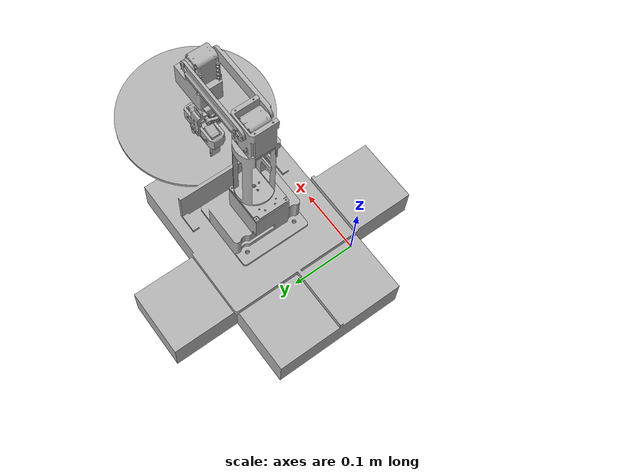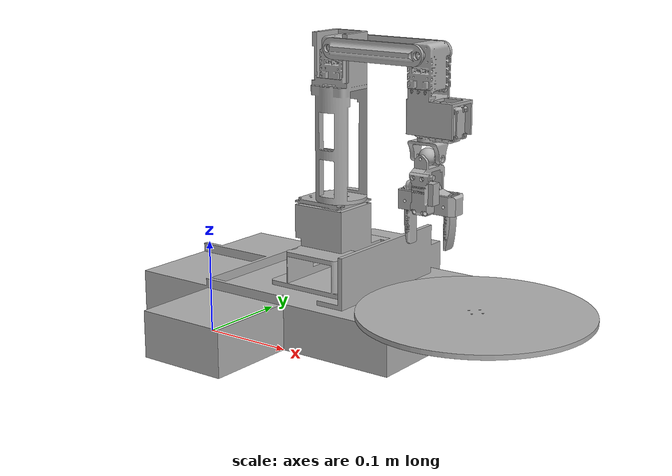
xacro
<?xml version="1.0" ?>
<robot name="plz_plz" xmlns:xacro="http://www.ros.org/wiki/xacro">

<xacro:include filename="$(find plz_plz_description)/urdf/materials.xacro" />
<xacro:include filename="$(find plz_plz_description)/urdf/plz_plz.trans" />
<xacro:include filename="$(find plz_plz_description)/urdf/plz_plz.gazebo" />
<link name="world" />

<joint name="Dummy" type="fixed">
  <parent link="world"/>
  <child link="base_link"/>
</joint>

<link name="base_link">
  <inertial>
    <origin rpy="0 0 0" xyz="0.0647656070783987 0.09964722621128595 0.02587425859081603"/>
    <mass value="34.73430793615963"/>
    <inertia ixx="0.280271" ixy="0.002401" ixz="-0.00249" iyy="0.272892" iyz="0.00013" izz="0.536481"/>
  </inertial>
  <visual>
    <origin rpy="0 0 0" xyz="0 0 0"/>
    <geometry>
      <mesh filename="package://plz_plz_description/meshes/base_link.stl" scale="0.001 0.001 0.001"/>
    </geometry>
    <material name="silver"/>
  </visual>
  <collision>
    <origin rpy="0 0 0" xyz="0 0 0"/>
    <geometry>
      <mesh filename="package://plz_plz_description/meshes/base_link.stl" scale="0.001 0.001 0.001"/>
    </geometry>
  </collision>
</link>

<link name="combined_servo_1">
  <inertial>
    <origin rpy="0 0 0" xyz="3.1092385664288624e-05 0.024262277970958118 0.0010585827393892883"/>
    <mass value="0.04244091097100989"/>
    <inertia ixx="1.2e-05" ixy="-0.0" ixz="-0.0" iyy="7e-06" iyz="0.0" izz="1e-05"/>
  </inertial>
  <visual>
    <origin rpy="0 0 0" xyz="-0.2855 -0.0621 -0.0365"/>
    <geometry>
      <mesh filename="package://plz_plz_description/meshes/combined_servo_1.stl" scale="0.001 0.001 0.001"/>
    </geometry>
    <material name="silver"/>
  </visual>
  <collision>
    <origin rpy="0 0 0" xyz="-0.2855 -0.0621 -0.0365"/>
    <geometry>
      <mesh filename="package://plz_plz_description/meshes/combined_servo_1.stl" scale="0.001 0.001 0.001"/>
    </geometry>
  </collision>
</link>

<link name="rotor_1">
  <inertial>
    <origin rpy="0 0 0" xyz="1.6653345369377348e-16 -5.551115123125783e-17 -0.0013364269823430697"/>
    <mass value="1.763990651474126"/>
    <inertia ixx="0.006396" ixy="0.0" ixz="0.0" iyy="0.006396" iyz="-0.0" izz="0.012784"/>
  </inertial>
  <visual>
    <origin rpy="0 0 0" xyz="-0.2855 -0.0736 -0.0575"/>
    <geometry>
      <mesh filename="package://plz_plz_description/meshes/rotor_1.stl" scale="0.001 0.001 0.001"/>
    </geometry>
    <material name="silver"/>
  </visual>
  <collision>
    <origin rpy="0 0 0" xyz="-0.2855 -0.0736 -0.0575"/>
    <geometry>
      <mesh filename="package://plz_plz_description/meshes/rotor_1.stl" scale="0.001 0.001 0.001"/>
    </geometry>
  </collision>
</link>

<link name="alternate_design_base_1">
  <inertial>
    <origin rpy="0 0 0" xyz="-0.04240080499470922 -0.03838955081168048 0.030268844098022774"/>
    <mass value="1.360206857851753"/>
    <inertia ixx="0.002133" ixy="3.2e-05" ixz="9e-05" iyy="0.001791" iyz="3.2e-05" izz="0.002131"/>
  </inertial>
  <visual>
    <origin rpy="0 0 0" xyz="-0.14 -0.14 -0.05"/>
    <geometry>
      <mesh filename="package://plz_plz_description/meshes/alternate_design_base_1.stl" scale="0.001 0.001 0.001"/>
    </geometry>
    <material name="silver"/>
  </visual>
  <collision>
    <origin rpy="0 0 0" xyz="-0.14 -0.14 -0.05"/>
    <geometry>
      <mesh filename="package://plz_plz_description/meshes/alternate_design_base_1.stl" scale="0.001 0.001 0.001"/>
    </geometry>
  </collision>
</link>

<link name="combined_servo_2_1">
  <inertial>
    <origin rpy="0 0 0" xyz="0.023237722029041785 0.00803109238566374 0.017058582739389316"/>
    <mass value="0.04244091097100989"/>
    <inertia ixx="7e-06" ixy="0.0" ixz="-0.0" iyy="1.2e-05" iyz="-0.0" izz="1e-05"/>
  </inertial>
  <visual>
    <origin rpy="0 0 0" xyz="-0.064 -0.092 -0.1025"/>
    <geometry>
      <mesh filename="package://plz_plz_description/meshes/combined_servo_2_1.stl" scale="0.001 0.001 0.001"/>
    </geometry>
    <material name="silver"/>
  </visual>
  <collision>
    <origin rpy="0 0 0" xyz="-0.064 -0.092 -0.1025"/>
    <geometry>
      <mesh filename="package://plz_plz_description/meshes/combined_servo_2_1.stl" scale="0.001 0.001 0.001"/>
    </geometry>
  </collision>
</link>

<link name="alternate_design_top_1">
  <inertial>
    <origin rpy="0 0 0" xyz="-0.07975434583254501 0.06199998025878909 -0.04551505890341592"/>
    <mass value="0.07878322016368548"/>
    <inertia ixx="2.4e-05" ixy="0.0" ixz="0.0" iyy="2.8e-05" iyz="-0.0" izz="5.2e-05"/>
  </inertial>
  <visual>
    <origin rpy="0 0 0" xyz="-0.169 -0.038 -0.185"/>
    <geometry>
      <mesh filename="package://plz_plz_description/meshes/alternate_design_top_1.stl" scale="0.001 0.001 0.001"/>
    </geometry>
    <material name="silver"/>
  </visual>
  <collision>
    <origin rpy="0 0 0" xyz="-0.169 -0.038 -0.185"/>
    <geometry>
      <mesh filename="package://plz_plz_description/meshes/alternate_design_top_1.stl" scale="0.001 0.001 0.001"/>
    </geometry>
  </collision>
</link>

<link name="link1_redo_1">
  <inertial>
    <origin rpy="0 0 0" xyz="-0.09999999971856094 0.1001210549833026 -0.018937112793331573"/>
    <mass value="0.6114874637735443"/>
    <inertia ixx="0.00206" ixy="0.0" ixz="0.0" iyy="0.002032" iyz="-2.7e-05" izz="0.000316"/>
  </inertial>
  <visual>
    <origin rpy="0 0 0" xyz="-0.2 0.0 -0.258"/>
    <geometry>
      <mesh filename="package://plz_plz_description/meshes/link1_redo_1.stl" scale="0.001 0.001 0.001"/>
    </geometry>
    <material name="silver"/>
  </visual>
  <collision>
    <origin rpy="0 0 0" xyz="-0.2 0.0 -0.258"/>
    <geometry>
      <mesh filename="package://plz_plz_description/meshes/link1_redo_1.stl" scale="0.001 0.001 0.001"/>
    </geometry>
  </collision>
</link>

<link name="combined_servo_v1_1">
  <inertial>
    <origin rpy="0 0 0" xyz="3.10923856640527e-05 -0.019941417260611105 -0.012762277970958136"/>
    <mass value="0.04244091097100989"/>
    <inertia ixx="1.2e-05" ixy="-0.0" ixz="0.0" iyy="1e-05" iyz="-0.0" izz="7e-06"/>
  </inertial>
  <visual>
    <origin rpy="0 0 0" xyz="-0.1 -0.12 -0.3055"/>
    <geometry>
      <mesh filename="package://plz_plz_description/meshes/combined_servo_v1_1.stl" scale="0.001 0.001 0.001"/>
    </geometry>
    <material name="silver"/>
  </visual>
  <collision>
    <origin rpy="0 0 0" xyz="-0.1 -0.12 -0.3055"/>
    <geometry>
      <mesh filename="package://plz_plz_description/meshes/combined_servo_v1_1.stl" scale="0.001 0.001 0.001"/>
    </geometry>
  </collision>
</link>

<link name="link_2_drive_side_1_1">
  <inertial>
    <origin rpy="0 0 0" xyz="0.05499999999998992 0.00297913371313184 -1.1102230246251565e-16"/>
    <mass value="0.10959339214106525"/>
    <inertia ixx="4e-06" ixy="-0.0" ixz="0.0" iyy="0.000128" iyz="0.0" izz="0.000125"/>
  </inertial>
  <visual>
    <origin rpy="0 0 0" xyz="-0.1 -0.12 -0.3055"/>
    <geometry>
      <mesh filename="package://plz_plz_description/meshes/link_2_drive_side_1_1.stl" scale="0.001 0.001 0.001"/>
    </geometry>
    <material name="silver"/>
  </visual>
  <collision>
    <origin rpy="0 0 0" xyz="-0.1 -0.12 -0.3055"/>
    <geometry>
      <mesh filename="package://plz_plz_description/meshes/link_2_drive_side_1_1.stl" scale="0.001 0.001 0.001"/>
    </geometry>
  </collision>
</link>

<link name="combined_servo_34_1">
  <inertial>
    <origin rpy="0 0 0" xyz="3.109238566276207e-05 -0.019941417260611216 -0.012762277970958247"/>
    <mass value="0.04244091097100989"/>
    <inertia ixx="1.2e-05" ixy="-0.0" ixz="0.0" iyy="1e-05" iyz="-0.0" izz="7e-06"/>
  </inertial>
  <visual>
    <origin rpy="0 0 0" xyz="-0.21 -0.12 -0.3055"/>
    <geometry>
      <mesh filename="package://plz_plz_description/meshes/combined_servo_34_1.stl" scale="0.001 0.001 0.001"/>
    </geometry>
    <material name="silver"/>
  </visual>
  <collision>
    <origin rpy="0 0 0" xyz="-0.21 -0.12 -0.3055"/>
    <geometry>
      <mesh filename="package://plz_plz_description/meshes/combined_servo_34_1.stl" scale="0.001 0.001 0.001"/>
    </geometry>
  </collision>
</link>

<link name="link_2_bear_side_2_1">
  <inertial>
    <origin rpy="0 0 0" xyz="0.10000000000000009 -0.16306538992477426 0.3055"/>
    <mass value="0.10495957301986933"/>
    <inertia ixx="4e-06" ixy="-0.0" ixz="-0.0" iyy="0.000108" iyz="0.0" izz="0.000105"/>
  </inertial>
  <visual>
    <origin rpy="0 0 0" xyz="-0.055 -0.24 -0.0"/>
    <geometry>
      <mesh filename="package://plz_plz_description/meshes/link_2_bear_side_2_1.stl" scale="0.001 0.001 0.001"/>
    </geometry>
    <material name="silver"/>
  </visual>
  <collision>
    <origin rpy="0 0 0" xyz="-0.055 -0.24 -0.0"/>
    <geometry>
      <mesh filename="package://plz_plz_description/meshes/link_2_bear_side_2_1.stl" scale="0.001 0.001 0.001"/>
    </geometry>
  </collision>
</link>

<link name="custom_attachment_1">
  <inertial>
    <origin rpy="0 0 0" xyz="0.01386152095105525 0.015996950547377375 -0.02111818001424054"/>
    <mass value="0.1490159824851383"/>
    <inertia ixx="5.6e-05" ixy="-0.0" ixz="0.0" iyy="6.4e-05" iyz="-0.0" izz="7.7e-05"/>
  </inertial>
  <visual>
    <origin rpy="0 0 0" xyz="-0.202 -0.083 -0.2695"/>
    <geometry>
      <mesh filename="package://plz_plz_description/meshes/custom_attachment_1.stl" scale="0.001 0.001 0.001"/>
    </geometry>
    <material name="silver"/>
  </visual>
  <collision>
    <origin rpy="0 0 0" xyz="-0.202 -0.083 -0.2695"/>
    <geometry>
      <mesh filename="package://plz_plz_description/meshes/custom_attachment_1.stl" scale="0.001 0.001 0.001"/>
    </geometry>
  </collision>
</link>

<link name="combined_servo_444_1">
  <inertial>
    <origin rpy="0 0 0" xyz="0.01276227809016442 3.1092385664663325e-05 -0.020058582739389347"/>
    <mass value="0.04244091097100989"/>
    <inertia ixx="7e-06" ixy="-0.0" ixz="-0.0" iyy="1.2e-05" iyz="0.0" izz="1e-05"/>
  </inertial>
  <visual>
    <origin rpy="0 0 0" xyz="-0.21 -0.099 -0.258"/>
    <geometry>
      <mesh filename="package://plz_plz_description/meshes/combined_servo_444_1.stl" scale="0.001 0.001 0.001"/>
    </geometry>
    <material name="silver"/>
  </visual>
  <collision>
    <origin rpy="0 0 0" xyz="-0.21 -0.099 -0.258"/>
    <geometry>
      <mesh filename="package://plz_plz_description/meshes/combined_servo_444_1.stl" scale="0.001 0.001 0.001"/>
    </geometry>
  </collision>
</link>

<link name="uni_top_1">
  <inertial>
    <origin rpy="0 0 0" xyz="2.387810837944926e-08 1.818978011269845e-08 -0.0061582520633806925"/>
    <mass value="0.034519961319972196"/>
    <inertia ixx="2e-06" ixy="0.0" ixz="0.0" iyy="7e-06" iyz="0.0" izz="7e-06"/>
  </inertial>
  <visual>
    <origin rpy="0 0 0" xyz="-0.21 -0.099 -0.218"/>
    <geometry>
      <mesh filename="package://plz_plz_description/meshes/uni_top_1.stl" scale="0.001 0.001 0.001"/>
    </geometry>
    <material name="silver"/>
  </visual>
  <collision>
    <origin rpy="0 0 0" xyz="-0.21 -0.099 -0.218"/>
    <geometry>
      <mesh filename="package://plz_plz_description/meshes/uni_top_1.stl" scale="0.001 0.001 0.001"/>
    </geometry>
  </collision>
</link>

<link name="uni_ball_1">
  <inertial>
    <origin rpy="0 0 0" xyz="-0.1974762811351711 0.20150000000000073 -0.09350000000000055"/>
    <mass value="0.02295088555051803"/>
    <inertia ixx="1e-06" ixy="-0.0" ixz="-0.0" iyy="1e-06" iyz="0.0" izz="1e-06"/>
  </inertial>
  <visual>
    <origin rpy="0 0 0" xyz="-0.4075 0.1025 -0.295"/>
    <geometry>
      <mesh filename="package://plz_plz_description/meshes/uni_ball_1.stl" scale="0.001 0.001 0.001"/>
    </geometry>
    <material name="silver"/>
  </visual>
  <collision>
    <origin rpy="0 0 0" xyz="-0.4075 0.1025 -0.295"/>
    <geometry>
      <mesh filename="package://plz_plz_description/meshes/uni_ball_1.stl" scale="0.001 0.001 0.001"/>
    </geometry>
  </collision>
</link>

<link name="swivel_mount_uni_1">
  <inertial>
    <origin rpy="0 0 0" xyz="0.21041385090837048 0.20425874284656131 0.09029325608185806"/>
    <mass value="0.05754238819667113"/>
    <inertia ixx="1.9e-05" ixy="0.0" ixz="0.0" iyy="9e-06" iyz="4e-06" izz="1.2e-05"/>
  </inertial>
  <visual>
    <origin rpy="0 0 0" xyz="-0.0 0.1025 -0.093386"/>
    <geometry>
      <mesh filename="package://plz_plz_description/meshes/swivel_mount_uni_1.stl" scale="0.001 0.001 0.001"/>
    </geometry>
    <material name="silver"/>
  </visual>
  <collision>
    <origin rpy="0 0 0" xyz="-0.0 0.1025 -0.093386"/>
    <geometry>
      <mesh filename="package://plz_plz_description/meshes/swivel_mount_uni_1.stl" scale="0.001 0.001 0.001"/>
    </geometry>
  </collision>
</link>

<link name="servo_mount_v2_1">
  <inertial>
    <origin rpy="0 0 0" xyz="-0.003429928555013173 0.002063273604326954 -0.02344946832106204"/>
    <mass value="0.029772743657989438"/>
    <inertia ixx="5e-06" ixy="-0.0" ixz="-0.0" iyy="5e-06" iyz="1e-06" izz="1e-06"/>
  </inertial>
  <visual>
    <origin rpy="0 0 0" xyz="-0.217674 -0.079314 -0.1832"/>
    <geometry>
      <mesh filename="package://plz_plz_description/meshes/servo_mount_v2_1.stl" scale="0.001 0.001 0.001"/>
    </geometry>
    <material name="silver"/>
  </visual>
  <collision>
    <origin rpy="0 0 0" xyz="-0.217674 -0.079314 -0.1832"/>
    <geometry>
      <mesh filename="package://plz_plz_description/meshes/servo_mount_v2_1.stl" scale="0.001 0.001 0.001"/>
    </geometry>
  </collision>
</link>

<link name="sg90_servo_model_1">
  <inertial>
    <origin rpy="0 0 0" xyz="-0.2226419274812125 0.18230013737004283 -0.061619333349609534"/>
    <mass value="0.05342056406351994"/>
    <inertia ixx="3e-06" ixy="0.0" ixz="0.0" iyy="5e-06" iyz="0.0" izz="3e-06"/>
  </inertial>
  <visual>
    <origin rpy="0 0 0" xyz="-0.439447 0.097086 -0.229639"/>
    <geometry>
      <mesh filename="package://plz_plz_description/meshes/sg90_servo_model_1.stl" scale="0.001 0.001 0.001"/>
    </geometry>
    <material name="silver"/>
  </visual>
  <collision>
    <origin rpy="0 0 0" xyz="-0.439447 0.097086 -0.229639"/>
    <geometry>
      <mesh filename="package://plz_plz_description/meshes/sg90_servo_model_1.stl" scale="0.001 0.001 0.001"/>
    </geometry>
  </collision>
</link>

<link name="housing_v2_1">
  <inertial>
    <origin rpy="0 0 0" xyz="-0.14770617031247008 -0.20685572764155952 -0.1260000350663968"/>
    <mass value="0.09892248371894476"/>
    <inertia ixx="1.2e-05" ixy="-0.0" ixz="-0.0" iyy="5.3e-05" iyz="-0.0" izz="5.8e-05"/>
  </inertial>
  <visual>
    <origin rpy="0 0 0" xyz="-0.358724 -0.309888 -0.281314"/>
    <geometry>
      <mesh filename="package://plz_plz_description/meshes/housing_v2_1.stl" scale="0.001 0.001 0.001"/>
    </geometry>
    <material name="silver"/>
  </visual>
  <collision>
    <origin rpy="0 0 0" xyz="-0.358724 -0.309888 -0.281314"/>
    <geometry>
      <mesh filename="package://plz_plz_description/meshes/housing_v2_1.stl" scale="0.001 0.001 0.001"/>
    </geometry>
  </collision>
</link>

<link name="schmoothgriparm1_1">
  <inertial>
    <origin rpy="0 0 0" xyz="0.002956873410833477 -0.007499862556250722 -0.008542370244581626"/>
    <mass value="0.06594334579288536"/>
    <inertia ixx="1.7e-05" ixy="0.0" ixz="-2e-06" iyy="1.8e-05" iyz="0.0" izz="3e-06"/>
  </inertial>
  <visual>
    <origin rpy="0 0 0" xyz="-0.187774 -0.111114 -0.15395"/>
    <geometry>
      <mesh filename="package://plz_plz_description/meshes/schmoothgriparm1_1.stl" scale="0.001 0.001 0.001"/>
    </geometry>
    <material name="silver"/>
  </visual>
  <collision>
    <origin rpy="0 0 0" xyz="-0.187774 -0.111114 -0.15395"/>
    <geometry>
      <mesh filename="package://plz_plz_description/meshes/schmoothgriparm1_1.stl" scale="0.001 0.001 0.001"/>
    </geometry>
  </collision>
</link>

<link name="smooth_1">
  <inertial>
    <origin rpy="0 0 0" xyz="-0.002957435681184617 0.00750013729633664 -0.00854237024458171"/>
    <mass value="0.06594334579288536"/>
    <inertia ixx="1.7e-05" ixy="0.0" ixz="2e-06" iyy="1.8e-05" iyz="-0.0" izz="3e-06"/>
  </inertial>
  <visual>
    <origin rpy="0 0 0" xyz="-0.234274 -0.095114 -0.15395"/>
    <geometry>
      <mesh filename="package://plz_plz_description/meshes/smooth_1.stl" scale="0.001 0.001 0.001"/>
    </geometry>
    <material name="silver"/>
  </visual>
  <collision>
    <origin rpy="0 0 0" xyz="-0.234274 -0.095114 -0.15395"/>
    <geometry>
      <mesh filename="package://plz_plz_description/meshes/smooth_1.stl" scale="0.001 0.001 0.001"/>
    </geometry>
  </collision>
</link>

<link name="servo_arm_v2_1">
  <inertial>
    <origin rpy="0 0 0" xyz="0.0011520564171381142 0.012061399928614311 0.004380915761521442"/>
    <mass value="0.009502860021823819"/>
    <inertia ixx="1e-06" ixy="-0.0" ixz="-0.0" iyy="0.0" iyz="-0.0" izz="1e-06"/>
  </inertial>
  <visual>
    <origin rpy="0 0 0" xyz="-0.200024 -0.085214 -0.173"/>
    <geometry>
      <mesh filename="package://plz_plz_description/meshes/servo_arm_v2_1.stl" scale="0.001 0.001 0.001"/>
    </geometry>
    <material name="silver"/>
  </visual>
  <collision>
    <origin rpy="0 0 0" xyz="-0.200024 -0.085214 -0.173"/>
    <geometry>
      <mesh filename="package://plz_plz_description/meshes/servo_arm_v2_1.stl" scale="0.001 0.001 0.001"/>
    </geometry>
  </collision>
</link>

<joint name="Rigid1" type="fixed">
  <origin rpy="0 0 0" xyz="0.2855 0.0621 0.0365"/>
  <parent link="base_link"/>
  <child link="combined_servo_1"/>
</joint>

<joint name="Rev2" type="continuous">
  <origin rpy="0 0 0" xyz="0.0 0.0115 0.021"/>
  <parent link="combined_servo_1"/>
  <child link="rotor_1"/>
  <axis xyz="-0.0 -0.0 1.0"/>
</joint>

<joint name="Rigid3" type="fixed">
  <origin rpy="0 0 0" xyz="0.14 0.14 0.05"/>
  <parent link="base_link"/>
  <child link="alternate_design_base_1"/>
</joint>

<joint name="Rigid4" type="fixed">
  <origin rpy="0 0 0" xyz="-0.076 -0.048 0.0525"/>
  <parent link="alternate_design_base_1"/>
  <child link="combined_servo_2_1"/>
</joint>

<joint name="Rigid5" type="fixed">
  <origin rpy="0 0 0" xyz="0.029 -0.102 0.135"/>
  <parent link="alternate_design_base_1"/>
  <child link="alternate_design_top_1"/>
</joint>

<joint name="Rev6" type="continuous">
  <origin rpy="0 0 0" xyz="0.136 -0.092 0.1555"/>
  <parent link="combined_servo_2_1"/>
  <child link="link1_redo_1"/>
  <axis xyz="-0.0 -0.0 1.0"/>
</joint>

<joint name="Rigid7" type="fixed">
  <origin rpy="0 0 0" xyz="-0.1 0.12 0.0475"/>
  <parent link="link1_redo_1"/>
  <child link="combined_servo_v1_1"/>
</joint>

<joint name="Rev8" type="continuous">
  <origin rpy="0 0 0" xyz="0.0 0.0 0.0"/>
  <parent link="combined_servo_v1_1"/>
  <child link="link_2_drive_side_1_1"/>
  <axis xyz="-0.0 1.0 0.0"/>
</joint>

<joint name="Rev9" type="continuous">
  <origin rpy="0 0 0" xyz="0.11 0.0 0.0"/>
  <parent link="link_2_drive_side_1_1"/>
  <child link="combined_servo_34_1"/>
  <axis xyz="0.0 -1.0 -0.0"/>
</joint>

<joint name="Rigid10" type="fixed">
  <origin rpy="0 0 0" xyz="-0.045 0.12 -0.3055"/>
  <parent link="link_2_drive_side_1_1"/>
  <child link="link_2_bear_side_2_1"/>
</joint>

<joint name="Rigid11" type="fixed">
  <origin rpy="0 0 0" xyz="-0.008 -0.037 -0.036"/>
  <parent link="combined_servo_34_1"/>
  <child link="custom_attachment_1"/>
</joint>

<joint name="Rigid12" type="fixed">
  <origin rpy="0 0 0" xyz="0.008 0.016 -0.0115"/>
  <parent link="custom_attachment_1"/>
  <child link="combined_servo_444_1"/>
</joint>

<joint name="Rev13" type="continuous">
  <origin rpy="0 0 0" xyz="0.0 0.0 -0.04"/>
  <parent link="combined_servo_444_1"/>
  <child link="uni_top_1"/>
  <axis xyz="0.0 0.0 -1.0"/>
</joint>

<joint name="Rev14" type="continuous">
  <origin rpy="0 0 0" xyz="0.1975 -0.2015 0.077"/>
  <parent link="uni_top_1"/>
  <child link="uni_ball_1"/>
  <axis xyz="-1.0 -0.0 0.0"/>
</joint>

<joint name="Rev15" type="continuous">
  <origin rpy="0 0 0" xyz="-0.4075 0.0 -0.201614"/>
  <parent link="uni_ball_1"/>
  <child link="swivel_mount_uni_1"/>
  <axis xyz="0.0 -1.0 -0.0"/>
</joint>

<joint name="Rigid16" type="fixed">
  <origin rpy="0 0 0" xyz="0.217674 0.181814 0.089814"/>
  <parent link="swivel_mount_uni_1"/>
  <child link="servo_mount_v2_1"/>
</joint>

<joint name="Rigid17" type="fixed">
  <origin rpy="0 0 0" xyz="0.221773 -0.1764 0.046439"/>
  <parent link="servo_mount_v2_1"/>
  <child link="sg90_servo_model_1"/>
</joint>

<joint name="Rev18" type="continuous">
  <origin rpy="0 0 0" xyz="0.358724 0.412388 0.187928"/>
  <parent link="swivel_mount_uni_1"/>
  <child link="housing_v2_1"/>
  <axis xyz="0.0 1.0 0.0"/>
</joint>

<joint name="Rev19" type="continuous">
  <origin rpy="0 0 0" xyz="-0.17095 -0.198774 -0.127364"/>
  <parent link="housing_v2_1"/>
  <child link="schmoothgriparm1_1"/>
  <axis xyz="0.0 1.0 0.0"/>
</joint>

<joint name="Rev20" type="continuous">
  <origin rpy="0 0 0" xyz="-0.12445 -0.214774 -0.127364"/>
  <parent link="housing_v2_1"/>
  <child link="smooth_1"/>
  <axis xyz="-0.0 1.0 0.0"/>
</joint>

<joint name="Rev21" type="continuous">
  <origin rpy="0 0 0" xyz="-0.239423 0.1823 -0.056639"/>
  <parent link="sg90_servo_model_1"/>
  <child link="servo_arm_v2_1"/>
  <axis xyz="-1.0 0.0 -0.0"/>
</joint>

</robot>

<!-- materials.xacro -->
<robot name="plz_plz" xmlns:xacro="http://www.ros.org/wiki/xacro" >

<material name="silver">
  <color rgba="0.700 0.700 0.700 1.000"/>
</material>

</robot>

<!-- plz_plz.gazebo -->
<robot name="plz_plz" xmlns:xacro="http://www.ros.org/wiki/xacro" >

<xacro:property name="body_color" value="Gazebo/Silver" />

<gazebo>
  <plugin filename="libgazebo_ros_control.so" name="control"/>
</gazebo>
<gazebo reference="base_link">
  <material>${body_color}</material>
  <mu1>0.2</mu1>
  <mu2>0.2</mu2>
  <selfCollide>true</selfCollide>
  <gravity>true</gravity>
</gazebo>

<gazebo reference="combined_servo_1">
  <material>${body_color}</material>
  <mu1>0.2</mu1>
  <mu2>0.2</mu2>
  <selfCollide>true</selfCollide>
</gazebo>

<gazebo reference="rotor_1">
  <material>${body_color}</material>
  <mu1>0.2</mu1>
  <mu2>0.2</mu2>
  <selfCollide>true</selfCollide>
</gazebo>

<gazebo reference="alternate_design_base_1">
  <material>${body_color}</material>
  <mu1>0.2</mu1>
  <mu2>0.2</mu2>
  <selfCollide>true</selfCollide>
</gazebo>

<gazebo reference="combined_servo_2_1">
  <material>${body_color}</material>
  <mu1>0.2</mu1>
  <mu2>0.2</mu2>
  <selfCollide>true</selfCollide>
</gazebo>

<gazebo reference="alternate_design_top_1">
  <material>${body_color}</material>
  <mu1>0.2</mu1>
  <mu2>0.2</mu2>
  <selfCollide>true</selfCollide>
</gazebo>

<gazebo reference="link1_redo_1">
  <material>${body_color}</material>
  <mu1>0.2</mu1>
  <mu2>0.2</mu2>
  <selfCollide>true</selfCollide>
</gazebo>

<gazebo reference="combined_servo_v1_1">
  <material>${body_color}</material>
  <mu1>0.2</mu1>
  <mu2>0.2</mu2>
  <selfCollide>true</selfCollide>
</gazebo>

<gazebo reference="link_2_drive_side_1_1">
  <material>${body_color}</material>
  <mu1>0.2</mu1>
  <mu2>0.2</mu2>
  <selfCollide>true</selfCollide>
</gazebo>

<gazebo reference="combined_servo_34_1">
  <material>${body_color}</material>
  <mu1>0.2</mu1>
  <mu2>0.2</mu2>
  <selfCollide>true</selfCollide>
</gazebo>

<gazebo reference="link_2_bear_side_2_1">
  <material>${body_color}</material>
  <mu1>0.2</mu1>
  <mu2>0.2</mu2>
  <selfCollide>true</selfCollide>
</gazebo>

<gazebo reference="custom_attachment_1">
  <material>${body_color}</material>
  <mu1>0.2</mu1>
  <mu2>0.2</mu2>
  <selfCollide>true</selfCollide>
</gazebo>

<gazebo reference="combined_servo_444_1">
  <material>${body_color}</material>
  <mu1>0.2</mu1>
  <mu2>0.2</mu2>
  <selfCollide>true</selfCollide>
</gazebo>

<gazebo reference="uni_top_1">
  <material>${body_color}</material>
  <mu1>0.2</mu1>
  <mu2>0.2</mu2>
  <selfCollide>true</selfCollide>
</gazebo>

<gazebo reference="uni_ball_1">
  <material>${body_color}</material>
  <mu1>0.2</mu1>
  <mu2>0.2</mu2>
  <selfCollide>true</selfCollide>
</gazebo>

<gazebo reference="swivel_mount_uni_1">
  <material>${body_color}</material>
  <mu1>0.2</mu1>
  <mu2>0.2</mu2>
  <selfCollide>true</selfCollide>
</gazebo>

<gazebo reference="servo_mount_v2_1">
  <material>${body_color}</material>
  <mu1>0.2</mu1>
  <mu2>0.2</mu2>
  <selfCollide>true</selfCollide>
</gazebo>

<gazebo reference="sg90_servo_model_1">
  <material>${body_color}</material>
  <mu1>0.2</mu1>
  <mu2>0.2</mu2>
  <selfCollide>true</selfCollide>
</gazebo>

<gazebo reference="housing_v2_1">
  <material>${body_color}</material>
  <mu1>0.2</mu1>
  <mu2>0.2</mu2>
  <selfCollide>true</selfCollide>
</gazebo>

<gazebo reference="schmoothgriparm1_1">
  <material>${body_color}</material>
  <mu1>0.2</mu1>
  <mu2>0.2</mu2>
  <selfCollide>true</selfCollide>
</gazebo>

<gazebo reference="smooth_1">
  <material>${body_color}</material>
  <mu1>0.2</mu1>
  <mu2>0.2</mu2>
  <selfCollide>true</selfCollide>
</gazebo>

<gazebo reference="servo_arm_v2_1">
  <material>${body_color}</material>
  <mu1>0.2</mu1>
  <mu2>0.2</mu2>
  <selfCollide>true</selfCollide>
</gazebo>

</robot>
